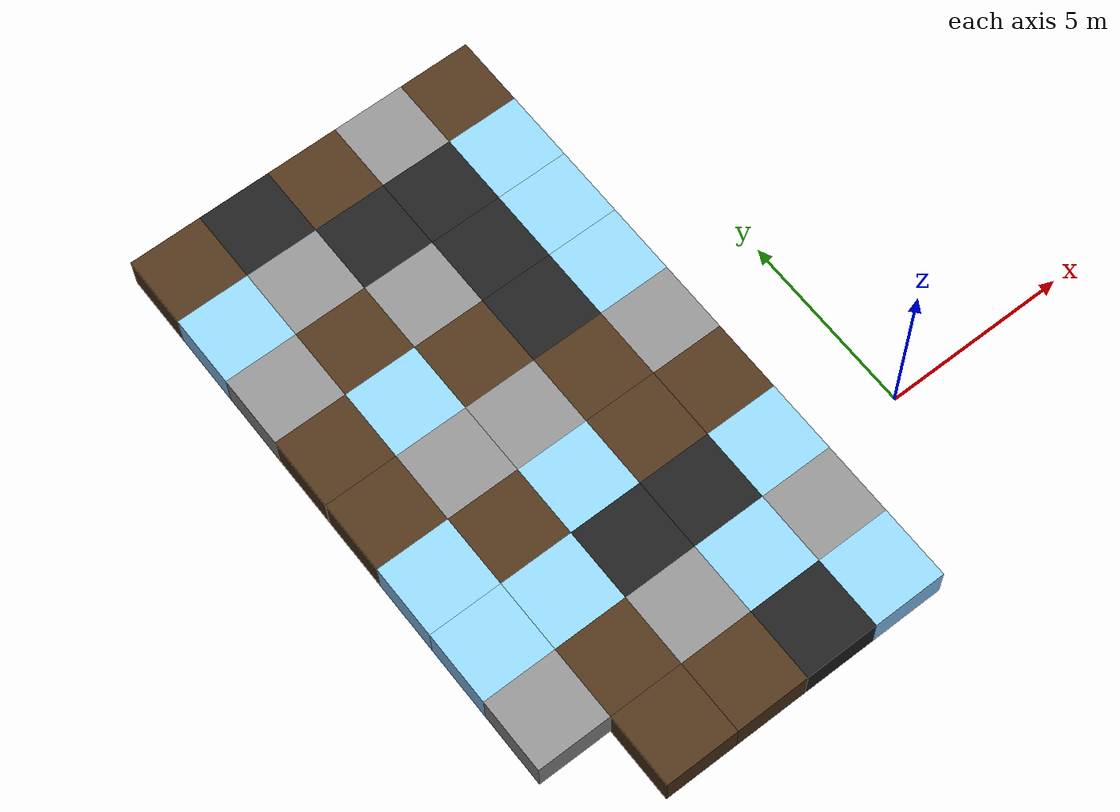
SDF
<sdf version="1.5">
 <world name="squares_example">
  <model name="tile_11_14">
   <static>true</static>
   <pose>-9.000 -3.000 -0.500 0 0 0</pose>
   <link name="link">
    <collision name="col">
     <geometry><box><size>2.0 2.0 1.0</size></box></geometry>
     <surface>
      <friction>
       <ode><mu>0.6</mu><mu2>0.4</mu2><fdir1>1 0 0</fdir1><slip1>0.08</slip1><slip2>0.08</slip2></ode>
       <torsional>
        <coefficient>0.03</coefficient>
        <use_patch_radius>false</use_patch_radius>
        <surface_radius>0.12</surface_radius>
        <ode><slip>0.0</slip></ode>
       </torsional>
      </friction>
      <bounce><restitution_coefficient>0.0</restitution_coefficient><threshold>0.1</threshold></bounce>
      <contact>
       <ode><kp>1000000.0</kp><kd>10000.0</kd><max_vel>0.01</max_vel><min_depth>0.0</min_depth></ode>
      </contact>
     </surface>
    </collision>
    <visual name="visual">
     <geometry><box><size>2.0 2.0 1.0</size></box></geometry>
     <material>
      <diffuse>0.30 0.20 0.10 1</diffuse>
      <ambient>0 0 0 0</ambient>
      <specular>0 0 0 1</specular>
      <emissive>0 0 0 1</emissive>
     </material>
    </visual>
   </link>
  </model>
  <model name="tile_12_14">
   <static>true</static>
   <pose>-7.000 -3.000 -0.500 0 0 0</pose>
   <link name="link">
    <collision name="col">
     <geometry><box><size>2.0 2.0 1.0</size></box></geometry>
     <surface>
      <friction>
       <ode><mu>0.6</mu><mu2>0.4</mu2><fdir1>1 0 0</fdir1><slip1>0.08</slip1><slip2>0.08</slip2></ode>
       <torsional>
        <coefficient>0.03</coefficient>
        <use_patch_radius>false</use_patch_radius>
        <surface_radius>0.12</surface_radius>
        <ode><slip>0.0</slip></ode>
       </torsional>
      </friction>
      <bounce><restitution_coefficient>0.0</restitution_coefficient><threshold>0.1</threshold></bounce>
      <contact>
       <ode><kp>1000000.0</kp><kd>10000.0</kd><max_vel>0.01</max_vel><min_depth>0.0</min_depth></ode>
      </contact>
     </surface>
    </collision>
    <visual name="visual">
     <geometry><box><size>2.0 2.0 1.0</size></box></geometry>
     <material>
      <diffuse>0.30 0.20 0.10 1</diffuse>
      <ambient>0 0 0 0</ambient>
      <specular>0 0 0 1</specular>
      <emissive>0 0 0 1</emissive>
     </material>
    </visual>
   </link>
  </model>
  <model name="tile_13_14">
   <static>true</static>
   <pose>-5.000 -3.000 -0.500 0 0 0</pose>
   <link name="link">
    <collision name="col">
     <geometry><box><size>2.0 2.0 1.0</size></box></geometry>
     <surface>
      <friction>
       <ode><mu>0.4</mu><mu2>0.15</mu2><fdir1>1 0 0</fdir1><slip1>0.0</slip1><slip2>0.0</slip2></ode>
       <torsional>
        <coefficient>0.03</coefficient>
        <use_patch_radius>false</use_patch_radius>
        <surface_radius>0.12</surface_radius>
        <ode><slip>0.0</slip></ode>
       </torsional>
      </friction>
      <bounce><restitution_coefficient>0.0</restitution_coefficient><threshold>0.1</threshold></bounce>
      <contact>
       <ode><kp>1000000000.0</kp><kd>1000000.0</kd><max_vel>0.01</max_vel><min_depth>0.0</min_depth></ode>
      </contact>
     </surface>
    </collision>
    <visual name="visual">
     <geometry><box><size>2.0 2.0 1.0</size></box></geometry>
     <material>
      <diffuse>0.12 0.12 0.12 1</diffuse>
      <ambient>0 0 0 0</ambient>
      <specular>0 0 0 1</specular>
      <emissive>0 0 0 1</emissive>
     </material>
    </visual>
   </link>
  </model>
  <model name="tile_14_14">
   <static>true</static>
   <pose>-3.000 -3.000 -0.500 0 0 0</pose>
   <link name="link">
    <collision name="col">
     <geometry><box><size>2.0 2.0 1.0</size></box></geometry>
     <surface>
      <friction>
       <ode><mu>0.03</mu><mu2>0.02</mu2><fdir1>1 0 0</fdir1><slip1>0.03</slip1><slip2>0.03</slip2></ode>
       <torsional>
        <coefficient>0.005</coefficient>
        <use_patch_radius>false</use_patch_radius>
        <surface_radius>0.12</surface_radius>
        <ode><slip>0.01</slip></ode>
       </torsional>
      </friction>
      <bounce><restitution_coefficient>0.0</restitution_coefficient><threshold>0.1</threshold></bounce>
      <contact>
       <ode><kp>10000000.0</kp><kd>1000.0</kd><max_vel>0.01</max_vel><min_depth>0.0</min_depth></ode>
      </contact>
     </surface>
    </collision>
    <visual name="visual">
     <geometry><box><size>2.0 2.0 1.0</size></box></geometry>
     <material>
      <diffuse>0.55 0.80 1.00 1</diffuse>
      <ambient>0 0 0 0</ambient>
      <specular>0 0 0 1</specular>
      <emissive>0 0 0 1</emissive>
     </material>
    </visual>
   </link>
  </model>
  <model name="tile_10_15">
   <static>true</static>
   <pose>-11.000 -1.000 -0.500 0 0 0</pose>
   <link name="link">
    <collision name="col">
     <geometry><box><size>2.0 2.0 1.0</size></box></geometry>
     <surface>
      <friction>
       <ode><mu>0.8</mu><mu2>0.3</mu2><fdir1>1 0 0</fdir1><slip1>0.0</slip1><slip2>0.0</slip2></ode>
       <torsional>
        <coefficient>0.03</coefficient>
        <use_patch_radius>false</use_patch_radius>
        <surface_radius>0.12</surface_radius>
        <ode><slip>0.0</slip></ode>
       </torsional>
      </friction>
      <bounce><restitution_coefficient>0.0</restitution_coefficient><threshold>0.1</threshold></bounce>
      <contact>
       <ode><kp>10000000000.0</kp><kd>10000000.0</kd><max_vel>0.01</max_vel><min_depth>0.0</min_depth></ode>
      </contact>
     </surface>
    </collision>
    <visual name="visual">
     <geometry><box><size>2.0 2.0 1.0</size></box></geometry>
     <material>
      <diffuse>0.55 0.55 0.55 1</diffuse>
      <ambient>0 0 0 0</ambient>
      <specular>0 0 0 1</specular>
      <emissive>0 0 0 1</emissive>
     </material>
    </visual>
   </link>
  </model>
  <model name="tile_11_15">
   <static>true</static>
   <pose>-9.000 -1.000 -0.500 0 0 0</pose>
   <link name="link">
    <collision name="col">
     <geometry><box><size>2.0 2.0 1.0</size></box></geometry>
     <surface>
      <friction>
       <ode><mu>0.6</mu><mu2>0.4</mu2><fdir1>1 0 0</fdir1><slip1>0.08</slip1><slip2>0.08</slip2></ode>
       <torsional>
        <coefficient>0.03</coefficient>
        <use_patch_radius>false</use_patch_radius>
        <surface_radius>0.12</surface_radius>
        <ode><slip>0.0</slip></ode>
       </torsional>
      </friction>
      <bounce><restitution_coefficient>0.0</restitution_coefficient><threshold>0.1</threshold></bounce>
      <contact>
       <ode><kp>1000000.0</kp><kd>10000.0</kd><max_vel>0.01</max_vel><min_depth>0.0</min_depth></ode>
      </contact>
     </surface>
    </collision>
    <visual name="visual">
     <geometry><box><size>2.0 2.0 1.0</size></box></geometry>
     <material>
      <diffuse>0.30 0.20 0.10 1</diffuse>
      <ambient>0 0 0 0</ambient>
      <specular>0 0 0 1</specular>
      <emissive>0 0 0 1</emissive>
     </material>
    </visual>
   </link>
  </model>
  <model name="tile_12_15">
   <static>true</static>
   <pose>-7.000 -1.000 -0.500 0 0 0</pose>
   <link name="link">
    <collision name="col">
     <geometry><box><size>2.0 2.0 1.0</size></box></geometry>
     <surface>
      <friction>
       <ode><mu>0.8</mu><mu2>0.3</mu2><fdir1>1 0 0</fdir1><slip1>0.0</slip1><slip2>0.0</slip2></ode>
       <torsional>
        <coefficient>0.03</coefficient>
        <use_patch_radius>false</use_patch_radius>
        <surface_radius>0.12</surface_radius>
        <ode><slip>0.0</slip></ode>
       </torsional>
      </friction>
      <bounce><restitution_coefficient>0.0</restitution_coefficient><threshold>0.1</threshold></bounce>
      <contact>
       <ode><kp>10000000000.0</kp><kd>10000000.0</kd><max_vel>0.01</max_vel><min_depth>0.0</min_depth></ode>
      </contact>
     </surface>
    </collision>
    <visual name="visual">
     <geometry><box><size>2.0 2.0 1.0</size></box></geometry>
     <material>
      <diffuse>0.55 0.55 0.55 1</diffuse>
      <ambient>0 0 0 0</ambient>
      <specular>0 0 0 1</specular>
      <emissive>0 0 0 1</emissive>
     </material>
    </visual>
   </link>
  </model>
  <model name="tile_13_15">
   <static>true</static>
   <pose>-5.000 -1.000 -0.500 0 0 0</pose>
   <link name="link">
    <collision name="col">
     <geometry><box><size>2.0 2.0 1.0</size></box></geometry>
     <surface>
      <friction>
       <ode><mu>0.03</mu><mu2>0.02</mu2><fdir1>1 0 0</fdir1><slip1>0.03</slip1><slip2>0.03</slip2></ode>
       <torsional>
        <coefficient>0.005</coefficient>
        <use_patch_radius>false</use_patch_radius>
        <surface_radius>0.12</surface_radius>
        <ode><slip>0.01</slip></ode>
       </torsional>
      </friction>
      <bounce><restitution_coefficient>0.0</restitution_coefficient><threshold>0.1</threshold></bounce>
      <contact>
       <ode><kp>10000000.0</kp><kd>1000.0</kd><max_vel>0.01</max_vel><min_depth>0.0</min_depth></ode>
      </contact>
     </surface>
    </collision>
    <visual name="visual">
     <geometry><box><size>2.0 2.0 1.0</size></box></geometry>
     <material>
      <diffuse>0.55 0.80 1.00 1</diffuse>
      <ambient>0 0 0 0</ambient>
      <specular>0 0 0 1</specular>
      <emissive>0 0 0 1</emissive>
     </material>
    </visual>
   </link>
  </model>
  <model name="tile_14_15">
   <static>true</static>
   <pose>-3.000 -1.000 -0.500 0 0 0</pose>
   <link name="link">
    <collision name="col">
     <geometry><box><size>2.0 2.0 1.0</size></box></geometry>
     <surface>
      <friction>
       <ode><mu>0.8</mu><mu2>0.3</mu2><fdir1>1 0 0</fdir1><slip1>0.0</slip1><slip2>0.0</slip2></ode>
       <torsional>
        <coefficient>0.03</coefficient>
        <use_patch_radius>false</use_patch_radius>
        <surface_radius>0.12</surface_radius>
        <ode><slip>0.0</slip></ode>
       </torsional>
      </friction>
      <bounce><restitution_coefficient>0.0</restitution_coefficient><threshold>0.1</threshold></bounce>
      <contact>
       <ode><kp>10000000000.0</kp><kd>10000000.0</kd><max_vel>0.01</max_vel><min_depth>0.0</min_depth></ode>
      </contact>
     </surface>
    </collision>
    <visual name="visual">
     <geometry><box><size>2.0 2.0 1.0</size></box></geometry>
     <material>
      <diffuse>0.55 0.55 0.55 1</diffuse>
      <ambient>0 0 0 0</ambient>
      <specular>0 0 0 1</specular>
      <emissive>0 0 0 1</emissive>
     </material>
    </visual>
   </link>
  </model>
  <model name="tile_10_16">
   <static>true</static>
   <pose>-11.000 1.000 -0.500 0 0 0</pose>
   <link name="link">
    <collision name="col">
     <geometry><box><size>2.0 2.0 1.0</size></box></geometry>
     <surface>
      <friction>
       <ode><mu>0.03</mu><mu2>0.02</mu2><fdir1>1 0 0</fdir1><slip1>0.03</slip1><slip2>0.03</slip2></ode>
       <torsional>
        <coefficient>0.005</coefficient>
        <use_patch_radius>false</use_patch_radius>
        <surface_radius>0.12</surface_radius>
        <ode><slip>0.01</slip></ode>
       </torsional>
      </friction>
      <bounce><restitution_coefficient>0.0</restitution_coefficient><threshold>0.1</threshold></bounce>
      <contact>
       <ode><kp>10000000.0</kp><kd>1000.0</kd><max_vel>0.01</max_vel><min_depth>0.0</min_depth></ode>
      </contact>
     </surface>
    </collision>
    <visual name="visual">
     <geometry><box><size>2.0 2.0 1.0</size></box></geometry>
     <material>
      <diffuse>0.55 0.80 1.00 1</diffuse>
      <ambient>0 0 0 0</ambient>
      <specular>0 0 0 1</specular>
      <emissive>0 0 0 1</emissive>
     </material>
    </visual>
   </link>
  </model>
  <model name="tile_11_16">
   <static>true</static>
   <pose>-9.000 1.000 -0.500 0 0 0</pose>
   <link name="link">
    <collision name="col">
     <geometry><box><size>2.0 2.0 1.0</size></box></geometry>
     <surface>
      <friction>
       <ode><mu>0.03</mu><mu2>0.02</mu2><fdir1>1 0 0</fdir1><slip1>0.03</slip1><slip2>0.03</slip2></ode>
       <torsional>
        <coefficient>0.005</coefficient>
        <use_patch_radius>false</use_patch_radius>
        <surface_radius>0.12</surface_radius>
        <ode><slip>0.01</slip></ode>
       </torsional>
      </friction>
      <bounce><restitution_coefficient>0.0</restitution_coefficient><threshold>0.1</threshold></bounce>
      <contact>
       <ode><kp>10000000.0</kp><kd>1000.0</kd><max_vel>0.01</max_vel><min_depth>0.0</min_depth></ode>
      </contact>
     </surface>
    </collision>
    <visual name="visual">
     <geometry><box><size>2.0 2.0 1.0</size></box></geometry>
     <material>
      <diffuse>0.55 0.80 1.00 1</diffuse>
      <ambient>0 0 0 0</ambient>
      <specular>0 0 0 1</specular>
      <emissive>0 0 0 1</emissive>
     </material>
    </visual>
   </link>
  </model>
  <model name="tile_12_16">
   <static>true</static>
   <pose>-7.000 1.000 -0.500 0 0 0</pose>
   <link name="link">
    <collision name="col">
     <geometry><box><size>2.0 2.0 1.0</size></box></geometry>
     <surface>
      <friction>
       <ode><mu>0.4</mu><mu2>0.15</mu2><fdir1>1 0 0</fdir1><slip1>0.0</slip1><slip2>0.0</slip2></ode>
       <torsional>
        <coefficient>0.03</coefficient>
        <use_patch_radius>false</use_patch_radius>
        <surface_radius>0.12</surface_radius>
        <ode><slip>0.0</slip></ode>
       </torsional>
      </friction>
      <bounce><restitution_coefficient>0.0</restitution_coefficient><threshold>0.1</threshold></bounce>
      <contact>
       <ode><kp>1000000000.0</kp><kd>1000000.0</kd><max_vel>0.01</max_vel><min_depth>0.0</min_depth></ode>
      </contact>
     </surface>
    </collision>
    <visual name="visual">
     <geometry><box><size>2.0 2.0 1.0</size></box></geometry>
     <material>
      <diffuse>0.12 0.12 0.12 1</diffuse>
      <ambient>0 0 0 0</ambient>
      <specular>0 0 0 1</specular>
      <emissive>0 0 0 1</emissive>
     </material>
    </visual>
   </link>
  </model>
  <model name="tile_13_16">
   <static>true</static>
   <pose>-5.000 1.000 -0.500 0 0 0</pose>
   <link name="link">
    <collision name="col">
     <geometry><box><size>2.0 2.0 1.0</size></box></geometry>
     <surface>
      <friction>
       <ode><mu>0.4</mu><mu2>0.15</mu2><fdir1>1 0 0</fdir1><slip1>0.0</slip1><slip2>0.0</slip2></ode>
       <torsional>
        <coefficient>0.03</coefficient>
        <use_patch_radius>false</use_patch_radius>
        <surface_radius>0.12</surface_radius>
        <ode><slip>0.0</slip></ode>
       </torsional>
      </friction>
      <bounce><restitution_coefficient>0.0</restitution_coefficient><threshold>0.1</threshold></bounce>
      <contact>
       <ode><kp>1000000000.0</kp><kd>1000000.0</kd><max_vel>0.01</max_vel><min_depth>0.0</min_depth></ode>
      </contact>
     </surface>
    </collision>
    <visual name="visual">
     <geometry><box><size>2.0 2.0 1.0</size></box></geometry>
     <material>
      <diffuse>0.12 0.12 0.12 1</diffuse>
      <ambient>0 0 0 0</ambient>
      <specular>0 0 0 1</specular>
      <emissive>0 0 0 1</emissive>
     </material>
    </visual>
   </link>
  </model>
  <model name="tile_14_16">
   <static>true</static>
   <pose>-3.000 1.000 -0.500 0 0 0</pose>
   <link name="link">
    <collision name="col">
     <geometry><box><size>2.0 2.0 1.0</size></box></geometry>
     <surface>
      <friction>
       <ode><mu>0.03</mu><mu2>0.02</mu2><fdir1>1 0 0</fdir1><slip1>0.03</slip1><slip2>0.03</slip2></ode>
       <torsional>
        <coefficient>0.005</coefficient>
        <use_patch_radius>false</use_patch_radius>
        <surface_radius>0.12</surface_radius>
        <ode><slip>0.01</slip></ode>
       </torsional>
      </friction>
      <bounce><restitution_coefficient>0.0</restitution_coefficient><threshold>0.1</threshold></bounce>
      <contact>
       <ode><kp>10000000.0</kp><kd>1000.0</kd><max_vel>0.01</max_vel><min_depth>0.0</min_depth></ode>
      </contact>
     </surface>
    </collision>
    <visual name="visual">
     <geometry><box><size>2.0 2.0 1.0</size></box></geometry>
     <material>
      <diffuse>0.55 0.80 1.00 1</diffuse>
      <ambient>0 0 0 0</ambient>
      <specular>0 0 0 1</specular>
      <emissive>0 0 0 1</emissive>
     </material>
    </visual>
   </link>
  </model>
  <model name="tile_10_17">
   <static>true</static>
   <pose>-11.000 3.000 -0.500 0 0 0</pose>
   <link name="link">
    <collision name="col">
     <geometry><box><size>2.0 2.0 1.0</size></box></geometry>
     <surface>
      <friction>
       <ode><mu>0.03</mu><mu2>0.02</mu2><fdir1>1 0 0</fdir1><slip1>0.03</slip1><slip2>0.03</slip2></ode>
       <torsional>
        <coefficient>0.005</coefficient>
        <use_patch_radius>false</use_patch_radius>
        <surface_radius>0.12</surface_radius>
        <ode><slip>0.01</slip></ode>
       </torsional>
      </friction>
      <bounce><restitution_coefficient>0.0</restitution_coefficient><threshold>0.1</threshold></bounce>
      <contact>
       <ode><kp>10000000.0</kp><kd>1000.0</kd><max_vel>0.01</max_vel><min_depth>0.0</min_depth></ode>
      </contact>
     </surface>
    </collision>
    <visual name="visual">
     <geometry><box><size>2.0 2.0 1.0</size></box></geometry>
     <material>
      <diffuse>0.55 0.80 1.00 1</diffuse>
      <ambient>0 0 0 0</ambient>
      <specular>0 0 0 1</specular>
      <emissive>0 0 0 1</emissive>
     </material>
    </visual>
   </link>
  </model>
  <model name="tile_11_17">
   <static>true</static>
   <pose>-9.000 3.000 -0.500 0 0 0</pose>
   <link name="link">
    <collision name="col">
     <geometry><box><size>2.0 2.0 1.0</size></box></geometry>
     <surface>
      <friction>
       <ode><mu>0.6</mu><mu2>0.4</mu2><fdir1>1 0 0</fdir1><slip1>0.08</slip1><slip2>0.08</slip2></ode>
       <torsional>
        <coefficient>0.03</coefficient>
        <use_patch_radius>false</use_patch_radius>
        <surface_radius>0.12</surface_radius>
        <ode><slip>0.0</slip></ode>
       </torsional>
      </friction>
      <bounce><restitution_coefficient>0.0</restitution_coefficient><threshold>0.1</threshold></bounce>
      <contact>
       <ode><kp>1000000.0</kp><kd>10000.0</kd><max_vel>0.01</max_vel><min_depth>0.0</min_depth></ode>
      </contact>
     </surface>
    </collision>
    <visual name="visual">
     <geometry><box><size>2.0 2.0 1.0</size></box></geometry>
     <material>
      <diffuse>0.30 0.20 0.10 1</diffuse>
      <ambient>0 0 0 0</ambient>
      <specular>0 0 0 1</specular>
      <emissive>0 0 0 1</emissive>
     </material>
    </visual>
   </link>
  </model>
  <model name="tile_12_17">
   <static>true</static>
   <pose>-7.000 3.000 -0.500 0 0 0</pose>
   <link name="link">
    <collision name="col">
     <geometry><box><size>2.0 2.0 1.0</size></box></geometry>
     <surface>
      <friction>
       <ode><mu>0.03</mu><mu2>0.02</mu2><fdir1>1 0 0</fdir1><slip1>0.03</slip1><slip2>0.03</slip2></ode>
       <torsional>
        <coefficient>0.005</coefficient>
        <use_patch_radius>false</use_patch_radius>
        <surface_radius>0.12</surface_radius>
        <ode><slip>0.01</slip></ode>
       </torsional>
      </friction>
      <bounce><restitution_coefficient>0.0</restitution_coefficient><threshold>0.1</threshold></bounce>
      <contact>
       <ode><kp>10000000.0</kp><kd>1000.0</kd><max_vel>0.01</max_vel><min_depth>0.0</min_depth></ode>
      </contact>
     </surface>
    </collision>
    <visual name="visual">
     <geometry><box><size>2.0 2.0 1.0</size></box></geometry>
     <material>
      <diffuse>0.55 0.80 1.00 1</diffuse>
      <ambient>0 0 0 0</ambient>
      <specular>0 0 0 1</specular>
      <emissive>0 0 0 1</emissive>
     </material>
    </visual>
   </link>
  </model>
  <model name="tile_13_17">
   <static>true</static>
   <pose>-5.000 3.000 -0.500 0 0 0</pose>
   <link name="link">
    <collision name="col">
     <geometry><box><size>2.0 2.0 1.0</size></box></geometry>
     <surface>
      <friction>
       <ode><mu>0.6</mu><mu2>0.4</mu2><fdir1>1 0 0</fdir1><slip1>0.08</slip1><slip2>0.08</slip2></ode>
       <torsional>
        <coefficient>0.03</coefficient>
        <use_patch_radius>false</use_patch_radius>
        <surface_radius>0.12</surface_radius>
        <ode><slip>0.0</slip></ode>
       </torsional>
      </friction>
      <bounce><restitution_coefficient>0.0</restitution_coefficient><threshold>0.1</threshold></bounce>
      <contact>
       <ode><kp>1000000.0</kp><kd>10000.0</kd><max_vel>0.01</max_vel><min_depth>0.0</min_depth></ode>
      </contact>
     </surface>
    </collision>
    <visual name="visual">
     <geometry><box><size>2.0 2.0 1.0</size></box></geometry>
     <material>
      <diffuse>0.30 0.20 0.10 1</diffuse>
      <ambient>0 0 0 0</ambient>
      <specular>0 0 0 1</specular>
      <emissive>0 0 0 1</emissive>
     </material>
    </visual>
   </link>
  </model>
  <model name="tile_14_17">
   <static>true</static>
   <pose>-3.000 3.000 -0.500 0 0 0</pose>
   <link name="link">
    <collision name="col">
     <geometry><box><size>2.0 2.0 1.0</size></box></geometry>
     <surface>
      <friction>
       <ode><mu>0.6</mu><mu2>0.4</mu2><fdir1>1 0 0</fdir1><slip1>0.08</slip1><slip2>0.08</slip2></ode>
       <torsional>
        <coefficient>0.03</coefficient>
        <use_patch_radius>false</use_patch_radius>
        <surface_radius>0.12</surface_radius>
        <ode><slip>0.0</slip></ode>
       </torsional>
      </friction>
      <bounce><restitution_coefficient>0.0</restitution_coefficient><threshold>0.1</threshold></bounce>
      <contact>
       <ode><kp>1000000.0</kp><kd>10000.0</kd><max_vel>0.01</max_vel><min_depth>0.0</min_depth></ode>
      </contact>
     </surface>
    </collision>
    <visual name="visual">
     <geometry><box><size>2.0 2.0 1.0</size></box></geometry>
     <material>
      <diffuse>0.30 0.20 0.10 1</diffuse>
      <ambient>0 0 0 0</ambient>
      <specular>0 0 0 1</specular>
      <emissive>0 0 0 1</emissive>
     </material>
    </visual>
   </link>
  </model>
  <model name="tile_10_18">
   <static>true</static>
   <pose>-11.000 5.000 -0.500 0 0 0</pose>
   <link name="link">
    <collision name="col">
     <geometry><box><size>2.0 2.0 1.0</size></box></geometry>
     <surface>
      <friction>
       <ode><mu>0.6</mu><mu2>0.4</mu2><fdir1>1 0 0</fdir1><slip1>0.08</slip1><slip2>0.08</slip2></ode>
       <torsional>
        <coefficient>0.03</coefficient>
        <use_patch_radius>false</use_patch_radius>
        <surface_radius>0.12</surface_radius>
        <ode><slip>0.0</slip></ode>
       </torsional>
      </friction>
      <bounce><restitution_coefficient>0.0</restitution_coefficient><threshold>0.1</threshold></bounce>
      <contact>
       <ode><kp>1000000.0</kp><kd>10000.0</kd><max_vel>0.01</max_vel><min_depth>0.0</min_depth></ode>
      </contact>
     </surface>
    </collision>
    <visual name="visual">
     <geometry><box><size>2.0 2.0 1.0</size></box></geometry>
     <material>
      <diffuse>0.30 0.20 0.10 1</diffuse>
      <ambient>0 0 0 0</ambient>
      <specular>0 0 0 1</specular>
      <emissive>0 0 0 1</emissive>
     </material>
    </visual>
   </link>
  </model>
  <model name="tile_11_18">
   <static>true</static>
   <pose>-9.000 5.000 -0.500 0 0 0</pose>
   <link name="link">
    <collision name="col">
     <geometry><box><size>2.0 2.0 1.0</size></box></geometry>
     <surface>
      <friction>
       <ode><mu>0.8</mu><mu2>0.3</mu2><fdir1>1 0 0</fdir1><slip1>0.0</slip1><slip2>0.0</slip2></ode>
       <torsional>
        <coefficient>0.03</coefficient>
        <use_patch_radius>false</use_patch_radius>
        <surface_radius>0.12</surface_radius>
        <ode><slip>0.0</slip></ode>
       </torsional>
      </friction>
      <bounce><restitution_coefficient>0.0</restitution_coefficient><threshold>0.1</threshold></bounce>
      <contact>
       <ode><kp>10000000000.0</kp><kd>10000000.0</kd><max_vel>0.01</max_vel><min_depth>0.0</min_depth></ode>
      </contact>
     </surface>
    </collision>
    <visual name="visual">
     <geometry><box><size>2.0 2.0 1.0</size></box></geometry>
     <material>
      <diffuse>0.55 0.55 0.55 1</diffuse>
      <ambient>0 0 0 0</ambient>
      <specular>0 0 0 1</specular>
      <emissive>0 0 0 1</emissive>
     </material>
    </visual>
   </link>
  </model>
  <model name="tile_12_18">
   <static>true</static>
   <pose>-7.000 5.000 -0.500 0 0 0</pose>
   <link name="link">
    <collision name="col">
     <geometry><box><size>2.0 2.0 1.0</size></box></geometry>
     <surface>
      <friction>
       <ode><mu>0.8</mu><mu2>0.3</mu2><fdir1>1 0 0</fdir1><slip1>0.0</slip1><slip2>0.0</slip2></ode>
       <torsional>
        <coefficient>0.03</coefficient>
        <use_patch_radius>false</use_patch_radius>
        <surface_radius>0.12</surface_radius>
        <ode><slip>0.0</slip></ode>
       </torsional>
      </friction>
      <bounce><restitution_coefficient>0.0</restitution_coefficient><threshold>0.1</threshold></bounce>
      <contact>
       <ode><kp>10000000000.0</kp><kd>10000000.0</kd><max_vel>0.01</max_vel><min_depth>0.0</min_depth></ode>
      </contact>
     </surface>
    </collision>
    <visual name="visual">
     <geometry><box><size>2.0 2.0 1.0</size></box></geometry>
     <material>
      <diffuse>0.55 0.55 0.55 1</diffuse>
      <ambient>0 0 0 0</ambient>
      <specular>0 0 0 1</specular>
      <emissive>0 0 0 1</emissive>
     </material>
    </visual>
   </link>
  </model>
  <model name="tile_13_18">
   <static>true</static>
   <pose>-5.000 5.000 -0.500 0 0 0</pose>
   <link name="link">
    <collision name="col">
     <geometry><box><size>2.0 2.0 1.0</size></box></geometry>
     <surface>
      <friction>
       <ode><mu>0.6</mu><mu2>0.4</mu2><fdir1>1 0 0</fdir1><slip1>0.08</slip1><slip2>0.08</slip2></ode>
       <torsional>
        <coefficient>0.03</coefficient>
        <use_patch_radius>false</use_patch_radius>
        <surface_radius>0.12</surface_radius>
        <ode><slip>0.0</slip></ode>
       </torsional>
      </friction>
      <bounce><restitution_coefficient>0.0</restitution_coefficient><threshold>0.1</threshold></bounce>
      <contact>
       <ode><kp>1000000.0</kp><kd>10000.0</kd><max_vel>0.01</max_vel><min_depth>0.0</min_depth></ode>
      </contact>
     </surface>
    </collision>
    <visual name="visual">
     <geometry><box><size>2.0 2.0 1.0</size></box></geometry>
     <material>
      <diffuse>0.30 0.20 0.10 1</diffuse>
      <ambient>0 0 0 0</ambient>
      <specular>0 0 0 1</specular>
      <emissive>0 0 0 1</emissive>
     </material>
    </visual>
   </link>
  </model>
  <model name="tile_14_18">
   <static>true</static>
   <pose>-3.000 5.000 -0.500 0 0 0</pose>
   <link name="link">
    <collision name="col">
     <geometry><box><size>2.0 2.0 1.0</size></box></geometry>
     <surface>
      <friction>
       <ode><mu>0.8</mu><mu2>0.3</mu2><fdir1>1 0 0</fdir1><slip1>0.0</slip1><slip2>0.0</slip2></ode>
       <torsional>
        <coefficient>0.03</coefficient>
        <use_patch_radius>false</use_patch_radius>
        <surface_radius>0.12</surface_radius>
        <ode><slip>0.0</slip></ode>
       </torsional>
      </friction>
      <bounce><restitution_coefficient>0.0</restitution_coefficient><threshold>0.1</threshold></bounce>
      <contact>
       <ode><kp>10000000000.0</kp><kd>10000000.0</kd><max_vel>0.01</max_vel><min_depth>0.0</min_depth></ode>
      </contact>
     </surface>
    </collision>
    <visual name="visual">
     <geometry><box><size>2.0 2.0 1.0</size></box></geometry>
     <material>
      <diffuse>0.55 0.55 0.55 1</diffuse>
      <ambient>0 0 0 0</ambient>
      <specular>0 0 0 1</specular>
      <emissive>0 0 0 1</emissive>
     </material>
    </visual>
   </link>
  </model>
  <model name="tile_10_19">
   <static>true</static>
   <pose>-11.000 7.000 -0.500 0 0 0</pose>
   <link name="link">
    <collision name="col">
     <geometry><box><size>2.0 2.0 1.0</size></box></geometry>
     <surface>
      <friction>
       <ode><mu>0.6</mu><mu2>0.4</mu2><fdir1>1 0 0</fdir1><slip1>0.08</slip1><slip2>0.08</slip2></ode>
       <torsional>
        <coefficient>0.03</coefficient>
        <use_patch_radius>false</use_patch_radius>
        <surface_radius>0.12</surface_radius>
        <ode><slip>0.0</slip></ode>
       </torsional>
      </friction>
      <bounce><restitution_coefficient>0.0</restitution_coefficient><threshold>0.1</threshold></bounce>
      <contact>
       <ode><kp>1000000.0</kp><kd>10000.0</kd><max_vel>0.01</max_vel><min_depth>0.0</min_depth></ode>
      </contact>
     </surface>
    </collision>
    <visual name="visual">
     <geometry><box><size>2.0 2.0 1.0</size></box></geometry>
     <material>
      <diffuse>0.30 0.20 0.10 1</diffuse>
      <ambient>0 0 0 0</ambient>
      <specular>0 0 0 1</specular>
      <emissive>0 0 0 1</emissive>
     </material>
    </visual>
   </link>
  </model>
  <model name="tile_11_19">
   <static>true</static>
   <pose>-9.000 7.000 -0.500 0 0 0</pose>
   <link name="link">
    <collision name="col">
     <geometry><box><size>2.0 2.0 1.0</size></box></geometry>
     <surface>
      <friction>
       <ode><mu>0.03</mu><mu2>0.02</mu2><fdir1>1 0 0</fdir1><slip1>0.03</slip1><slip2>0.03</slip2></ode>
       <torsional>
        <coefficient>0.005</coefficient>
        <use_patch_radius>false</use_patch_radius>
        <surface_radius>0.12</surface_radius>
        <ode><slip>0.01</slip></ode>
       </torsional>
      </friction>
      <bounce><restitution_coefficient>0.0</restitution_coefficient><threshold>0.1</threshold></bounce>
      <contact>
       <ode><kp>10000000.0</kp><kd>1000.0</kd><max_vel>0.01</max_vel><min_depth>0.0</min_depth></ode>
      </contact>
     </surface>
    </collision>
    <visual name="visual">
     <geometry><box><size>2.0 2.0 1.0</size></box></geometry>
     <material>
      <diffuse>0.55 0.80 1.00 1</diffuse>
      <ambient>0 0 0 0</ambient>
      <specular>0 0 0 1</specular>
      <emissive>0 0 0 1</emissive>
     </material>
    </visual>
   </link>
  </model>
  <model name="tile_12_19">
   <static>true</static>
   <pose>-7.000 7.000 -0.500 0 0 0</pose>
   <link name="link">
    <collision name="col">
     <geometry><box><size>2.0 2.0 1.0</size></box></geometry>
     <surface>
      <friction>
       <ode><mu>0.6</mu><mu2>0.4</mu2><fdir1>1 0 0</fdir1><slip1>0.08</slip1><slip2>0.08</slip2></ode>
       <torsional>
        <coefficient>0.03</coefficient>
        <use_patch_radius>false</use_patch_radius>
        <surface_radius>0.12</surface_radius>
        <ode><slip>0.0</slip></ode>
       </torsional>
      </friction>
      <bounce><restitution_coefficient>0.0</restitution_coefficient><threshold>0.1</threshold></bounce>
      <contact>
       <ode><kp>1000000.0</kp><kd>10000.0</kd><max_vel>0.01</max_vel><min_depth>0.0</min_depth></ode>
      </contact>
     </surface>
    </collision>
    <visual name="visual">
     <geometry><box><size>2.0 2.0 1.0</size></box></geometry>
     <material>
      <diffuse>0.30 0.20 0.10 1</diffuse>
      <ambient>0 0 0 0</ambient>
      <specular>0 0 0 1</specular>
      <emissive>0 0 0 1</emissive>
     </material>
    </visual>
   </link>
  </model>
  <model name="tile_13_19">
   <static>true</static>
   <pose>-5.000 7.000 -0.500 0 0 0</pose>
   <link name="link">
    <collision name="col">
     <geometry><box><size>2.0 2.0 1.0</size></box></geometry>
     <surface>
      <friction>
       <ode><mu>0.4</mu><mu2>0.15</mu2><fdir1>1 0 0</fdir1><slip1>0.0</slip1><slip2>0.0</slip2></ode>
       <torsional>
        <coefficient>0.03</coefficient>
        <use_patch_radius>false</use_patch_radius>
        <surface_radius>0.12</surface_radius>
        <ode><slip>0.0</slip></ode>
       </torsional>
      </friction>
      <bounce><restitution_coefficient>0.0</restitution_coefficient><threshold>0.1</threshold></bounce>
      <contact>
       <ode><kp>1000000000.0</kp><kd>1000000.0</kd><max_vel>0.01</max_vel><min_depth>0.0</min_depth></ode>
      </contact>
     </surface>
    </collision>
    <visual name="visual">
     <geometry><box><size>2.0 2.0 1.0</size></box></geometry>
     <material>
      <diffuse>0.12 0.12 0.12 1</diffuse>
      <ambient>0 0 0 0</ambient>
      <specular>0 0 0 1</specular>
      <emissive>0 0 0 1</emissive>
     </material>
    </visual>
   </link>
  </model>
  <model name="tile_14_19">
   <static>true</static>
   <pose>-3.000 7.000 -0.500 0 0 0</pose>
   <link name="link">
    <collision name="col">
     <geometry><box><size>2.0 2.0 1.0</size></box></geometry>
     <surface>
      <friction>
       <ode><mu>0.03</mu><mu2>0.02</mu2><fdir1>1 0 0</fdir1><slip1>0.03</slip1><slip2>0.03</slip2></ode>
       <torsional>
        <coefficient>0.005</coefficient>
        <use_patch_radius>false</use_patch_radius>
        <surface_radius>0.12</surface_radius>
        <ode><slip>0.01</slip></ode>
       </torsional>
      </friction>
      <bounce><restitution_coefficient>0.0</restitution_coefficient><threshold>0.1</threshold></bounce>
      <contact>
       <ode><kp>10000000.0</kp><kd>1000.0</kd><max_vel>0.01</max_vel><min_depth>0.0</min_depth></ode>
      </contact>
     </surface>
    </collision>
    <visual name="visual">
     <geometry><box><size>2.0 2.0 1.0</size></box></geometry>
     <material>
      <diffuse>0.55 0.80 1.00 1</diffuse>
      <ambient>0 0 0 0</ambient>
      <specular>0 0 0 1</specular>
      <emissive>0 0 0 1</emissive>
     </material>
    </visual>
   </link>
  </model>
  <model name="tile_10_20">
   <static>true</static>
   <pose>-11.000 9.000 -0.500 0 0 0</pose>
   <link name="link">
    <collision name="col">
     <geometry><box><size>2.0 2.0 1.0</size></box></geometry>
     <surface>
      <friction>
       <ode><mu>0.8</mu><mu2>0.3</mu2><fdir1>1 0 0</fdir1><slip1>0.0</slip1><slip2>0.0</slip2></ode>
       <torsional>
        <coefficient>0.03</coefficient>
        <use_patch_radius>false</use_patch_radius>
        <surface_radius>0.12</surface_radius>
        <ode><slip>0.0</slip></ode>
       </torsional>
      </friction>
      <bounce><restitution_coefficient>0.0</restitution_coefficient><threshold>0.1</threshold></bounce>
      <contact>
       <ode><kp>10000000000.0</kp><kd>10000000.0</kd><max_vel>0.01</max_vel><min_depth>0.0</min_depth></ode>
      </contact>
     </surface>
    </collision>
    <visual name="visual">
     <geometry><box><size>2.0 2.0 1.0</size></box></geometry>
     <material>
      <diffuse>0.55 0.55 0.55 1</diffuse>
      <ambient>0 0 0 0</ambient>
      <specular>0 0 0 1</specular>
      <emissive>0 0 0 1</emissive>
     </material>
    </visual>
   </link>
  </model>
  <model name="tile_11_20">
   <static>true</static>
   <pose>-9.000 9.000 -0.500 0 0 0</pose>
   <link name="link">
    <collision name="col">
     <geometry><box><size>2.0 2.0 1.0</size></box></geometry>
     <surface>
      <friction>
       <ode><mu>0.6</mu><mu2>0.4</mu2><fdir1>1 0 0</fdir1><slip1>0.08</slip1><slip2>0.08</slip2></ode>
       <torsional>
        <coefficient>0.03</coefficient>
        <use_patch_radius>false</use_patch_radius>
        <surface_radius>0.12</surface_radius>
        <ode><slip>0.0</slip></ode>
       </torsional>
      </friction>
      <bounce><restitution_coefficient>0.0</restitution_coefficient><threshold>0.1</threshold></bounce>
      <contact>
       <ode><kp>1000000.0</kp><kd>10000.0</kd><max_vel>0.01</max_vel><min_depth>0.0</min_depth></ode>
      </contact>
     </surface>
    </collision>
    <visual name="visual">
     <geometry><box><size>2.0 2.0 1.0</size></box></geometry>
     <material>
      <diffuse>0.30 0.20 0.10 1</diffuse>
      <ambient>0 0 0 0</ambient>
      <specular>0 0 0 1</specular>
      <emissive>0 0 0 1</emissive>
     </material>
    </visual>
   </link>
  </model>
  <model name="tile_12_20">
   <static>true</static>
   <pose>-7.000 9.000 -0.500 0 0 0</pose>
   <link name="link">
    <collision name="col">
     <geometry><box><size>2.0 2.0 1.0</size></box></geometry>
     <surface>
      <friction>
       <ode><mu>0.8</mu><mu2>0.3</mu2><fdir1>1 0 0</fdir1><slip1>0.0</slip1><slip2>0.0</slip2></ode>
       <torsional>
        <coefficient>0.03</coefficient>
        <use_patch_radius>false</use_patch_radius>
        <surface_radius>0.12</surface_radius>
        <ode><slip>0.0</slip></ode>
       </torsional>
      </friction>
      <bounce><restitution_coefficient>0.0</restitution_coefficient><threshold>0.1</threshold></bounce>
      <contact>
       <ode><kp>10000000000.0</kp><kd>10000000.0</kd><max_vel>0.01</max_vel><min_depth>0.0</min_depth></ode>
      </contact>
     </surface>
    </collision>
    <visual name="visual">
     <geometry><box><size>2.0 2.0 1.0</size></box></geometry>
     <material>
      <diffuse>0.55 0.55 0.55 1</diffuse>
      <ambient>0 0 0 0</ambient>
      <specular>0 0 0 1</specular>
      <emissive>0 0 0 1</emissive>
     </material>
    </visual>
   </link>
  </model>
  <model name="tile_13_20">
   <static>true</static>
   <pose>-5.000 9.000 -0.500 0 0 0</pose>
   <link name="link">
    <collision name="col">
     <geometry><box><size>2.0 2.0 1.0</size></box></geometry>
     <surface>
      <friction>
       <ode><mu>0.4</mu><mu2>0.15</mu2><fdir1>1 0 0</fdir1><slip1>0.0</slip1><slip2>0.0</slip2></ode>
       <torsional>
        <coefficient>0.03</coefficient>
        <use_patch_radius>false</use_patch_radius>
        <surface_radius>0.12</surface_radius>
        <ode><slip>0.0</slip></ode>
       </torsional>
      </friction>
      <bounce><restitution_coefficient>0.0</restitution_coefficient><threshold>0.1</threshold></bounce>
      <contact>
       <ode><kp>1000000000.0</kp><kd>1000000.0</kd><max_vel>0.01</max_vel><min_depth>0.0</min_depth></ode>
      </contact>
     </surface>
    </collision>
    <visual name="visual">
     <geometry><box><size>2.0 2.0 1.0</size></box></geometry>
     <material>
      <diffuse>0.12 0.12 0.12 1</diffuse>
      <ambient>0 0 0 0</ambient>
      <specular>0 0 0 1</specular>
      <emissive>0 0 0 1</emissive>
     </material>
    </visual>
   </link>
  </model>
  <model name="tile_14_20">
   <static>true</static>
   <pose>-3.000 9.000 -0.500 0 0 0</pose>
   <link name="link">
    <collision name="col">
     <geometry><box><size>2.0 2.0 1.0</size></box></geometry>
     <surface>
      <friction>
       <ode><mu>0.03</mu><mu2>0.02</mu2><fdir1>1 0 0</fdir1><slip1>0.03</slip1><slip2>0.03</slip2></ode>
       <torsional>
        <coefficient>0.005</coefficient>
        <use_patch_radius>false</use_patch_radius>
        <surface_radius>0.12</surface_radius>
        <ode><slip>0.01</slip></ode>
       </torsional>
      </friction>
      <bounce><restitution_coefficient>0.0</restitution_coefficient><threshold>0.1</threshold></bounce>
      <contact>
       <ode><kp>10000000.0</kp><kd>1000.0</kd><max_vel>0.01</max_vel><min_depth>0.0</min_depth></ode>
      </contact>
     </surface>
    </collision>
    <visual name="visual">
     <geometry><box><size>2.0 2.0 1.0</size></box></geometry>
     <material>
      <diffuse>0.55 0.80 1.00 1</diffuse>
      <ambient>0 0 0 0</ambient>
      <specular>0 0 0 1</specular>
      <emissive>0 0 0 1</emissive>
     </material>
    </visual>
   </link>
  </model>
  <model name="tile_10_21">
   <static>true</static>
   <pose>-11.000 11.000 -0.500 0 0 0</pose>
   <link name="link">
    <collision name="col">
     <geometry><box><size>2.0 2.0 1.0</size></box></geometry>
     <surface>
      <friction>
       <ode><mu>0.03</mu><mu2>0.02</mu2><fdir1>1 0 0</fdir1><slip1>0.03</slip1><slip2>0.03</slip2></ode>
       <torsional>
        <coefficient>0.005</coefficient>
        <use_patch_radius>false</use_patch_radius>
        <surface_radius>0.12</surface_radius>
        <ode><slip>0.01</slip></ode>
       </torsional>
      </friction>
      <bounce><restitution_coefficient>0.0</restitution_coefficient><threshold>0.1</threshold></bounce>
      <contact>
       <ode><kp>10000000.0</kp><kd>1000.0</kd><max_vel>0.01</max_vel><min_depth>0.0</min_depth></ode>
      </contact>
     </surface>
    </collision>
    <visual name="visual">
     <geometry><box><size>2.0 2.0 1.0</size></box></geometry>
     <material>
      <diffuse>0.55 0.80 1.00 1</diffuse>
      <ambient>0 0 0 0</ambient>
      <specular>0 0 0 1</specular>
      <emissive>0 0 0 1</emissive>
     </material>
    </visual>
   </link>
  </model>
  <model name="tile_11_21">
   <static>true</static>
   <pose>-9.000 11.000 -0.500 0 0 0</pose>
   <link name="link">
    <collision name="col">
     <geometry><box><size>2.0 2.0 1.0</size></box></geometry>
     <surface>
      <friction>
       <ode><mu>0.8</mu><mu2>0.3</mu2><fdir1>1 0 0</fdir1><slip1>0.0</slip1><slip2>0.0</slip2></ode>
       <torsional>
        <coefficient>0.03</coefficient>
        <use_patch_radius>false</use_patch_radius>
        <surface_radius>0.12</surface_radius>
        <ode><slip>0.0</slip></ode>
       </torsional>
      </friction>
      <bounce><restitution_coefficient>0.0</restitution_coefficient><threshold>0.1</threshold></bounce>
      <contact>
       <ode><kp>10000000000.0</kp><kd>10000000.0</kd><max_vel>0.01</max_vel><min_depth>0.0</min_depth></ode>
      </contact>
     </surface>
    </collision>
    <visual name="visual">
     <geometry><box><size>2.0 2.0 1.0</size></box></geometry>
     <material>
      <diffuse>0.55 0.55 0.55 1</diffuse>
      <ambient>0 0 0 0</ambient>
      <specular>0 0 0 1</specular>
      <emissive>0 0 0 1</emissive>
     </material>
    </visual>
   </link>
  </model>
  <model name="tile_12_21">
   <static>true</static>
   <pose>-7.000 11.000 -0.500 0 0 0</pose>
   <link name="link">
    <collision name="col">
     <geometry><box><size>2.0 2.0 1.0</size></box></geometry>
     <surface>
      <friction>
       <ode><mu>0.4</mu><mu2>0.15</mu2><fdir1>1 0 0</fdir1><slip1>0.0</slip1><slip2>0.0</slip2></ode>
       <torsional>
        <coefficient>0.03</coefficient>
        <use_patch_radius>false</use_patch_radius>
        <surface_radius>0.12</surface_radius>
        <ode><slip>0.0</slip></ode>
       </torsional>
      </friction>
      <bounce><restitution_coefficient>0.0</restitution_coefficient><threshold>0.1</threshold></bounce>
      <contact>
       <ode><kp>1000000000.0</kp><kd>1000000.0</kd><max_vel>0.01</max_vel><min_depth>0.0</min_depth></ode>
      </contact>
     </surface>
    </collision>
    <visual name="visual">
     <geometry><box><size>2.0 2.0 1.0</size></box></geometry>
     <material>
      <diffuse>0.12 0.12 0.12 1</diffuse>
      <ambient>0 0 0 0</ambient>
      <specular>0 0 0 1</specular>
      <emissive>0 0 0 1</emissive>
     </material>
    </visual>
   </link>
  </model>
  <model name="tile_13_21">
   <static>true</static>
   <pose>-5.000 11.000 -0.500 0 0 0</pose>
   <link name="link">
    <collision name="col">
     <geometry><box><size>2.0 2.0 1.0</size></box></geometry>
     <surface>
      <friction>
       <ode><mu>0.4</mu><mu2>0.15</mu2><fdir1>1 0 0</fdir1><slip1>0.0</slip1><slip2>0.0</slip2></ode>
       <torsional>
        <coefficient>0.03</coefficient>
        <use_patch_radius>false</use_patch_radius>
        <surface_radius>0.12</surface_radius>
        <ode><slip>0.0</slip></ode>
       </torsional>
      </friction>
      <bounce><restitution_coefficient>0.0</restitution_coefficient><threshold>0.1</threshold></bounce>
      <contact>
       <ode><kp>1000000000.0</kp><kd>1000000.0</kd><max_vel>0.01</max_vel><min_depth>0.0</min_depth></ode>
      </contact>
     </surface>
    </collision>
    <visual name="visual">
     <geometry><box><size>2.0 2.0 1.0</size></box></geometry>
     <material>
      <diffuse>0.12 0.12 0.12 1</diffuse>
      <ambient>0 0 0 0</ambient>
      <specular>0 0 0 1</specular>
      <emissive>0 0 0 1</emissive>
     </material>
    </visual>
   </link>
  </model>
  <model name="tile_14_21">
   <static>true</static>
   <pose>-3.000 11.000 -0.500 0 0 0</pose>
   <link name="link">
    <collision name="col">
     <geometry><box><size>2.0 2.0 1.0</size></box></geometry>
     <surface>
      <friction>
       <ode><mu>0.03</mu><mu2>0.02</mu2><fdir1>1 0 0</fdir1><slip1>0.03</slip1><slip2>0.03</slip2></ode>
       <torsional>
        <coefficient>0.005</coefficient>
        <use_patch_radius>false</use_patch_radius>
        <surface_radius>0.12</surface_radius>
        <ode><slip>0.01</slip></ode>
       </torsional>
      </friction>
      <bounce><restitution_coefficient>0.0</restitution_coefficient><threshold>0.1</threshold></bounce>
      <contact>
       <ode><kp>10000000.0</kp><kd>1000.0</kd><max_vel>0.01</max_vel><min_depth>0.0</min_depth></ode>
      </contact>
     </surface>
    </collision>
    <visual name="visual">
     <geometry><box><size>2.0 2.0 1.0</size></box></geometry>
     <material>
      <diffuse>0.55 0.80 1.00 1</diffuse>
      <ambient>0 0 0 0</ambient>
      <specular>0 0 0 1</specular>
      <emissive>0 0 0 1</emissive>
     </material>
    </visual>
   </link>
  </model>
  <model name="tile_10_22">
   <static>true</static>
   <pose>-11.000 13.000 -0.500 0 0 0</pose>
   <link name="link">
    <collision name="col">
     <geometry><box><size>2.0 2.0 1.0</size></box></geometry>
     <surface>
      <friction>
       <ode><mu>0.6</mu><mu2>0.4</mu2><fdir1>1 0 0</fdir1><slip1>0.08</slip1><slip2>0.08</slip2></ode>
       <torsional>
        <coefficient>0.03</coefficient>
        <use_patch_radius>false</use_patch_radius>
        <surface_radius>0.12</surface_radius>
        <ode><slip>0.0</slip></ode>
       </torsional>
      </friction>
      <bounce><restitution_coefficient>0.0</restitution_coefficient><threshold>0.1</threshold></bounce>
      <contact>
       <ode><kp>1000000.0</kp><kd>10000.0</kd><max_vel>0.01</max_vel><min_depth>0.0</min_depth></ode>
      </contact>
     </surface>
    </collision>
    <visual name="visual">
     <geometry><box><size>2.0 2.0 1.0</size></box></geometry>
     <material>
      <diffuse>0.30 0.20 0.10 1</diffuse>
      <ambient>0 0 0 0</ambient>
      <specular>0 0 0 1</specular>
      <emissive>0 0 0 1</emissive>
     </material>
    </visual>
   </link>
  </model>
  <model name="tile_11_22">
   <static>true</static>
   <pose>-9.000 13.000 -0.500 0 0 0</pose>
   <link name="link">
    <collision name="col">
     <geometry><box><size>2.0 2.0 1.0</size></box></geometry>
     <surface>
      <friction>
       <ode><mu>0.4</mu><mu2>0.15</mu2><fdir1>1 0 0</fdir1><slip1>0.0</slip1><slip2>0.0</slip2></ode>
       <torsional>
        <coefficient>0.03</coefficient>
        <use_patch_radius>false</use_patch_radius>
        <surface_radius>0.12</surface_radius>
        <ode><slip>0.0</slip></ode>
       </torsional>
      </friction>
      <bounce><restitution_coefficient>0.0</restitution_coefficient><threshold>0.1</threshold></bounce>
      <contact>
       <ode><kp>1000000000.0</kp><kd>1000000.0</kd><max_vel>0.01</max_vel><min_depth>0.0</min_depth></ode>
      </contact>
     </surface>
    </collision>
    <visual name="visual">
     <geometry><box><size>2.0 2.0 1.0</size></box></geometry>
     <material>
      <diffuse>0.12 0.12 0.12 1</diffuse>
      <ambient>0 0 0 0</ambient>
      <specular>0 0 0 1</specular>
      <emissive>0 0 0 1</emissive>
     </material>
    </visual>
   </link>
  </model>
  <model name="tile_12_22">
   <static>true</static>
   <pose>-7.000 13.000 -0.500 0 0 0</pose>
   <link name="link">
    <collision name="col">
     <geometry><box><size>2.0 2.0 1.0</size></box></geometry>
     <surface>
      <friction>
       <ode><mu>0.6</mu><mu2>0.4</mu2><fdir1>1 0 0</fdir1><slip1>0.08</slip1><slip2>0.08</slip2></ode>
       <torsional>
        <coefficient>0.03</coefficient>
        <use_patch_radius>false</use_patch_radius>
        <surface_radius>0.12</surface_radius>
        <ode><slip>0.0</slip></ode>
       </torsional>
      </friction>
      <bounce><restitution_coefficient>0.0</restitution_coefficient><threshold>0.1</threshold></bounce>
      <contact>
       <ode><kp>1000000.0</kp><kd>10000.0</kd><max_vel>0.01</max_vel><min_depth>0.0</min_depth></ode>
      </contact>
     </surface>
    </collision>
    <visual name="visual">
     <geometry><box><size>2.0 2.0 1.0</size></box></geometry>
     <material>
      <diffuse>0.30 0.20 0.10 1</diffuse>
      <ambient>0 0 0 0</ambient>
      <specular>0 0 0 1</specular>
      <emissive>0 0 0 1</emissive>
     </material>
    </visual>
   </link>
  </model>
  <model name="tile_13_22">
   <static>true</static>
   <pose>-5.000 13.000 -0.500 0 0 0</pose>
   <link name="link">
    <collision name="col">
     <geometry><box><size>2.0 2.0 1.0</size></box></geometry>
     <surface>
      <friction>
       <ode><mu>0.8</mu><mu2>0.3</mu2><fdir1>1 0 0</fdir1><slip1>0.0</slip1><slip2>0.0</slip2></ode>
       <torsional>
        <coefficient>0.03</coefficient>
        <use_patch_radius>false</use_patch_radius>
        <surface_radius>0.12</surface_radius>
        <ode><slip>0.0</slip></ode>
       </torsional>
      </friction>
      <bounce><restitution_coefficient>0.0</restitution_coefficient><threshold>0.1</threshold></bounce>
      <contact>
       <ode><kp>10000000000.0</kp><kd>10000000.0</kd><max_vel>0.01</max_vel><min_depth>0.0</min_depth></ode>
      </contact>
     </surface>
    </collision>
    <visual name="visual">
     <geometry><box><size>2.0 2.0 1.0</size></box></geometry>
     <material>
      <diffuse>0.55 0.55 0.55 1</diffuse>
      <ambient>0 0 0 0</ambient>
      <specular>0 0 0 1</specular>
      <emissive>0 0 0 1</emissive>
     </material>
    </visual>
   </link>
  </model>
  <model name="tile_14_22">
   <static>true</static>
   <pose>-3.000 13.000 -0.500 0 0 0</pose>
   <link name="link">
    <collision name="col">
     <geometry><box><size>2.0 2.0 1.0</size></box></geometry>
     <surface>
      <friction>
       <ode><mu>0.6</mu><mu2>0.4</mu2><fdir1>1 0 0</fdir1><slip1>0.08</slip1><slip2>0.08</slip2></ode>
       <torsional>
        <coefficient>0.03</coefficient>
        <use_patch_radius>false</use_patch_radius>
        <surface_radius>0.12</surface_radius>
        <ode><slip>0.0</slip></ode>
       </torsional>
      </friction>
      <bounce><restitution_coefficient>0.0</restitution_coefficient><threshold>0.1</threshold></bounce>
      <contact>
       <ode><kp>1000000.0</kp><kd>10000.0</kd><max_vel>0.01</max_vel><min_depth>0.0</min_depth></ode>
      </contact>
     </surface>
    </collision>
    <visual name="visual">
     <geometry><box><size>2.0 2.0 1.0</size></box></geometry>
     <material>
      <diffuse>0.30 0.20 0.10 1</diffuse>
      <ambient>0 0 0 0</ambient>
      <specular>0 0 0 1</specular>
      <emissive>0 0 0 1</emissive>
     </material>
    </visual>
   </link>
  </model>
 </world>
</sdf>
